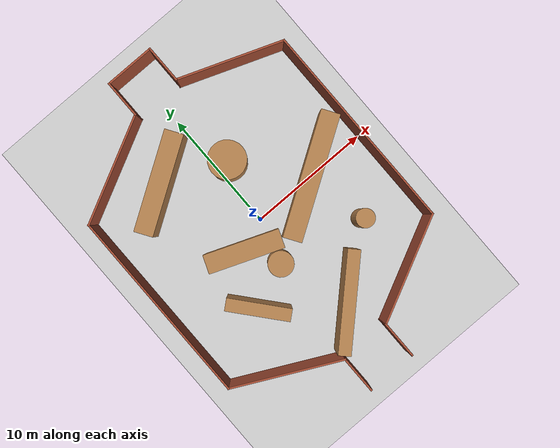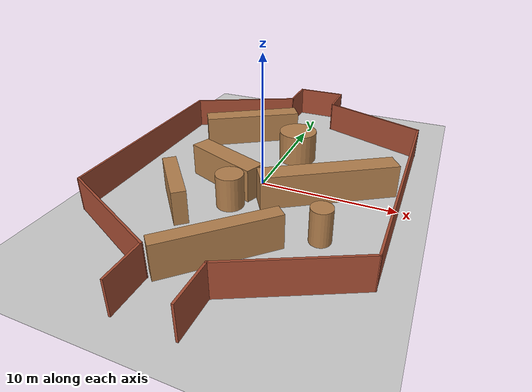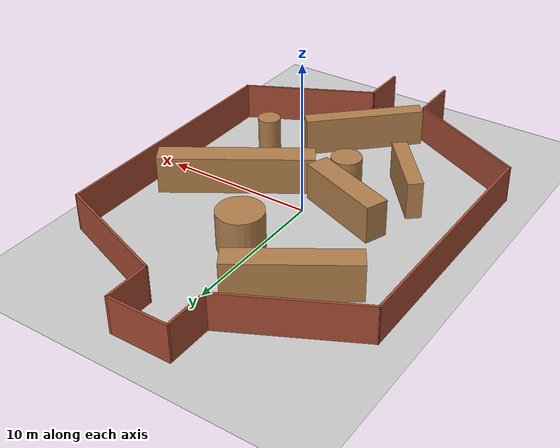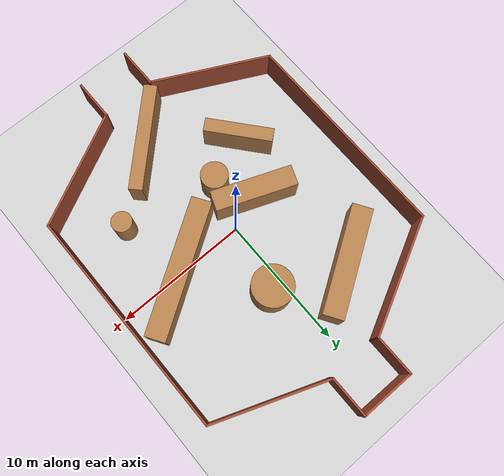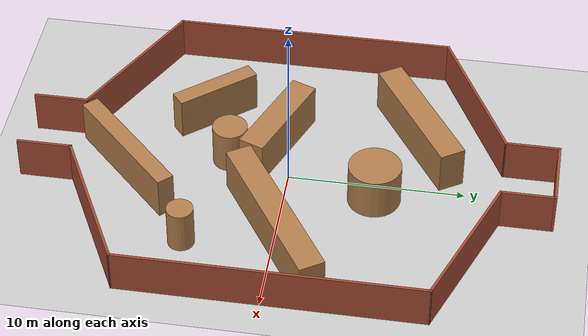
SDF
<sdf version="1.6">
 <world name="default">
  <light name="sun" type="directional">
   <pose>0 0 10 0 -0 0</pose>
   <diffuse>0.8 0.8 0.8 1</diffuse>
   <specular>0.1 0.1 0.1 1</specular>
   <attenuation>
    <range>1000</range>
    <constant>0.9</constant>
    <linear>0.01</linear>
    <quadratic>0.001</quadratic>
   </attenuation>
   <direction>-0.5 0.5 -1</direction>
  </light>
  <model name="ground_plane">
   <static>1</static>
   <link name="link">
    <collision name="collision">
     <geometry><plane><normal>0 0 1</normal><size>100 100</size></plane></geometry>
     <surface><friction><ode><mu>100</mu><mu2>50</mu2></ode></friction></surface>
    </collision>
    <visual name="visual">
     <cast_shadows>0</cast_shadows>
     <geometry><plane><normal>0 0 1</normal><size>100 100</size></plane></geometry>
     <material>
      <script><uri>file://media/materials/scripts/gazebo.material</uri><name>Gazebo/Grey</name></script>
     </material>
    </visual>
   </link>
  </model>
  <gravity>0 0 -9.8</gravity>
  <magnetic_field>6e-06 2.3e-05 -4.2e-05</magnetic_field>
  <atmosphere type="adiabatic"/>
  <physics name="default_physics" default="0" type="ode">
   <max_step_size>0.004</max_step_size>
   <real_time_factor>1</real_time_factor>
   <real_time_update_rate>5000</real_time_update_rate>
   <ode><solver><type>quick</type><iters>100</iters></solver></ode>
  </physics>
  <scene><ambient>0.4 0.4 0.4 1</ambient><background>0.7 0.7 0.7 1</background><shadows>1</shadows></scene>
  <spherical_coordinates>
   <surface_model>EARTH_WGS84</surface_model>
   <latitude_deg>0</latitude_deg>
   <longitude_deg>0</longitude_deg>
   <elevation>0</elevation>
   <heading_deg>0</heading_deg>
  </spherical_coordinates>
  <include><uri>model://Parkour2</uri><name>parkour</name></include>
 </world>
</sdf>

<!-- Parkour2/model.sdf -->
<sdf version='1.6'>
  <model name='Parkour2'>
    <pose frame=''>-0 0 0 0 -0 0</pose>
    <link name='Wall_0'>
      <collision name='Wall_0_Collision'>
        <geometry>
          <box>
            <size>3.15 0.15 2.5</size>
          </box>
        </geometry>
        <pose frame=''>0 0 1.25 0 -0 0</pose>
      </collision>
      <visual name='Wall_0_Visual'>
        <pose frame=''>0 0 1.25 0 -0 0</pose>
        <geometry>
          <box>
            <size>3.15 0.15 2.5</size>
          </box>
        </geometry>
        <material>
          <script>
            <uri>file://media/materials/scripts/gazebo.material</uri>
            <name>Gazebo/Bricks</name>
          </script>
          <ambient>1 1 1 1</ambient>
        </material>
      </visual>
      <pose frame=''>-2 13.5 0 0 0 -1.5708</pose>
    </link>
    <link name='Wall_1'>
      <collision name='Wall_1_Collision'>
        <geometry>
          <box>
            <size>9.09427 0.15 2.5</size>
          </box>
        </geometry>
        <pose frame=''>0 0 1.25 0 -0 0</pose>
      </collision>
      <visual name='Wall_1_Visual'>
        <pose frame=''>0 0 1.25 0 -0 0</pose>
        <geometry>
          <box>
            <size>9.09427 0.15 2.5</size>
          </box>
        </geometry>
        <material>
          <script>
            <uri>file://media/materials/scripts/gazebo.material</uri>
            <name>Gazebo/Bricks</name>
          </script>
          <ambient>1 1 1 1</ambient>
        </material>
      </visual>
      <pose frame=''>-6 10 0 0 0 -2.67794</pose>
    </link>
    <link name='Wall_10'>
      <collision name='Wall_10_Collision'>
        <geometry>
          <box>
            <size>3.15 0.15 2.5</size>
          </box>
        </geometry>
        <pose frame=''>0 0 1.25 0 -0 0</pose>
      </collision>
      <visual name='Wall_10_Visual'>
        <pose frame=''>0 0 1.25 0 -0 0</pose>
        <geometry>
          <box>
            <size>3.15 0.15 2.5</size>
          </box>
        </geometry>
        <material>
          <script>
            <uri>file://media/materials/scripts/gazebo.material</uri>
            <name>Gazebo/Bricks</name>
          </script>
          <ambient>1 1 1 1</ambient>
        </material>
      </visual>
      <pose frame=''>2 13.5 0 0 -0 1.5708</pose>
    </link>
    <link name='Wall_11'>
      <collision name='Wall_11_Collision'>
        <geometry>
          <box>
            <size>4.15 0.15 2.5</size>
          </box>
        </geometry>
        <pose frame=''>0 0 1.25 0 -0 0</pose>
      </collision>
      <visual name='Wall_11_Visual'>
        <pose frame=''>0 0 1.25 0 -0 0</pose>
        <geometry>
          <box>
            <size>4.15 0.15 2.5</size>
          </box>
        </geometry>
        <material>
          <script>
            <uri>file://media/materials/scripts/gazebo.material</uri>
            <name>Gazebo/Bricks</name>
          </script>
          <ambient>1 1 1 1</ambient>
        </material>
      </visual>
      <pose frame=''>0 15 0 0 -0 3.14159</pose>
    </link>
    <link name='Wall_2'>
      <collision name='Wall_2_Collision'>
        <geometry>
          <box>
            <size>16.15 0.15 2.5</size>
          </box>
        </geometry>
        <pose frame=''>0 0 1.25 0 -0 0</pose>
      </collision>
      <visual name='Wall_2_Visual'>
        <pose frame=''>0 0 1.25 0 -0 0</pose>
        <geometry>
          <box>
            <size>16.15 0.15 2.5</size>
          </box>
        </geometry>
        <material>
          <script>
            <uri>file://media/materials/scripts/gazebo.material</uri>
            <name>Gazebo/Bricks</name>
          </script>
          <ambient>1 1 1 1</ambient>
        </material>
      </visual>
      <pose frame=''>-10 0 0 0 0 -1.5708</pose>
    </link>
    <link name='Wall_3'>
      <collision name='Wall_3_Collision'>
        <geometry>
          <box>
            <size>9.09427 0.15 2.5</size>
          </box>
        </geometry>
        <pose frame=''>0 0 1.25 0 -0 0</pose>
      </collision>
      <visual name='Wall_3_Visual'>
        <pose frame=''>0 0 1.25 0 -0 0</pose>
        <geometry>
          <box>
            <size>9.09427 0.15 2.5</size>
          </box>
        </geometry>
        <material>
          <script>
            <uri>file://media/materials/scripts/gazebo.material</uri>
            <name>Gazebo/Bricks</name>
          </script>
          <ambient>1 1 1 1</ambient>
        </material>
      </visual>
      <pose frame=''>-6 -10 0 0 0 -0.463648</pose>
    </link>
    <link name='Wall_4'>
      <collision name='Wall_4_Collision'>
        <geometry>
          <box>
            <size>3.15 0.15 2.5</size>
          </box>
        </geometry>
        <pose frame=''>0 0 1.25 0 -0 0</pose>
      </collision>
      <visual name='Wall_4_Visual'>
        <pose frame=''>0 0 1.25 0 -0 0</pose>
        <geometry>
          <box>
            <size>3.15 0.15 2.5</size>
          </box>
        </geometry>
        <material>
          <script>
            <uri>file://media/materials/scripts/gazebo.material</uri>
            <name>Gazebo/Bricks</name>
          </script>
          <ambient>1 1 1 1</ambient>
        </material>
      </visual>
      <pose frame=''>-2 -13.5 0 0 0 -1.5708</pose>
    </link>
    <link name='Wall_6'>
      <collision name='Wall_6_Collision'>
        <geometry>
          <box>
            <size>3.15 0.15 2.5</size>
          </box>
        </geometry>
        <pose frame=''>0 0 1.25 0 -0 0</pose>
      </collision>
      <visual name='Wall_6_Visual'>
        <pose frame=''>0 0 1.25 0 -0 0</pose>
        <geometry>
          <box>
            <size>3.15 0.15 2.5</size>
          </box>
        </geometry>
        <material>
          <script>
            <uri>file://media/materials/scripts/gazebo.material</uri>
            <name>Gazebo/Bricks</name>
          </script>
          <ambient>1 1 1 1</ambient>
        </material>
      </visual>
      <pose frame=''>2 -13.5 0 0 -0 1.5708</pose>
    </link>
    <link name='Wall_7'>
      <collision name='Wall_7_Collision'>
        <geometry>
          <box>
            <size>9.09427 0.15 2.5</size>
          </box>
        </geometry>
        <pose frame=''>0 0 1.25 0 -0 0</pose>
      </collision>
      <visual name='Wall_7_Visual'>
        <pose frame=''>0 0 1.25 0 -0 0</pose>
        <geometry>
          <box>
            <size>9.09427 0.15 2.5</size>
          </box>
        </geometry>
        <material>
          <script>
            <uri>file://media/materials/scripts/gazebo.material</uri>
            <name>Gazebo/Bricks</name>
          </script>
          <ambient>1 1 1 1</ambient>
        </material>
      </visual>
      <pose frame=''>6 -10 0 0 -0 0.463648</pose>
    </link>
    <link name='Wall_8'>
      <collision name='Wall_8_Collision'>
        <geometry>
          <box>
            <size>17.15 0.15 2.5</size>
          </box>
        </geometry>
        <pose frame=''>0 0 1.25 0 -0 0</pose>
      </collision>
      <visual name='Wall_8_Visual'>
        <pose frame=''>0 0 1.25 0 -0 0</pose>
        <geometry>
          <box>
            <size>17.15 0.15 2.5</size>
          </box>
        </geometry>
        <material>
          <script>
            <uri>file://media/materials/scripts/gazebo.material</uri>
            <name>Gazebo/Bricks</name>
          </script>
          <ambient>1 1 1 1</ambient>
        </material>
      </visual>
      <pose frame=''>10 0.5 0 0 -0 1.5708</pose>
    </link>
    <link name='Wall_9'>
      <collision name='Wall_9_Collision'>
        <geometry>
          <box>
            <size>8.694 0.15 2.5</size>
          </box>
        </geometry>
        <pose frame=''>0 0 1.25 0 -0 0</pose>
      </collision>
      <visual name='Wall_9_Visual'>
        <pose frame=''>0 0 1.25 0 -0 0</pose>
        <geometry>
          <box>
            <size>8.694 0.15 2.5</size>
          </box>
        </geometry>
        <material>
          <script>
            <uri>file://media/materials/scripts/gazebo.material</uri>
            <name>Gazebo/Bricks</name>
          </script>
          <ambient>1 1 1 1</ambient>
        </material>
      </visual>
      <pose frame=''>6 10.5 0 0 -0 2.78282</pose>
    </link>

<!-- objects BOX -->
    <link name='Box_1'>
      <collision name='Box_1_Collision'>
        <geometry>
          <box>
            <size>1.5 8 2.5</size>
          </box>
        </geometry>
        <pose frame=''>0 0 1.25 0 -0 0</pose>
      </collision>
      <visual name='Box_1_Visual'>
        <pose frame=''>0 0 1.25 0 -0 0</pose>
        <geometry>
          <box>
            <size>1.5 8 2.5</size>
          </box>
        </geometry>
        <material>
          <script>
            <uri>file://media/materials/scripts/gazebo.material</uri>
            <name>Gazebo/Wood</name>
          </script>
          <ambient>1 1 1 1</ambient>
        </material>
      </visual>
      <pose frame=''>-4 7 0  -0 0 -1.0</pose>
    </link>

    <link name='Box_2'>
      <collision name='Box_2_Collision'>
        <geometry>
          <box>
            <size>1.5 10 2.5</size>
          </box>
        </geometry>
        <pose frame=''>0 0 1.25 0 -0 0</pose>
      </collision>
      <visual name='Box_2_Visual'>
        <pose frame=''>0 0 1.25 0 -0 0</pose>
        <geometry>
          <box>
            <size>1.5 10 2.5</size>
          </box>
        </geometry>
        <material>
          <script>
            <uri>file://media/materials/scripts/gazebo.material</uri>
            <name>Gazebo/Wood</name>
          </script>
          <ambient>1 1 1 1</ambient>
        </material>
      </visual>
      <pose frame=''>5 0 0 -0 0 -1.0</pose>
    </link>

    <link name='Box_3'>
      <collision name='Box_3_Collision'>
        <geometry>
          <box>
            <size>1.5 6 2.5</size>
          </box>
        </geometry>
        <pose frame=''>0 0 1.25 0 -0 0</pose>
      </collision>
      <visual name='Box_3_Visual'>
        <pose frame=''>0 0 1.25 0 -0 0</pose>
        <geometry>
          <box>
            <size>1.5 6 2.5</size>
          </box>
        </geometry>
        <material>
          <script>
            <uri>file://media/materials/scripts/gazebo.material</uri>
            <name>Gazebo/Wood</name>
          </script>
          <ambient>1 1 1 1</ambient>
        </material>
      </visual>
      <pose frame=''>-2.5 -1 0 -0 0 1.2</pose>
    </link>

    <link name='Box_4'>
      <collision name='Box_4_Collision'>
        <geometry>
          <box>
            <size>1 8 2.5</size>
          </box>
        </geometry>
        <pose frame=''>0 0 1.25 0 -0 0</pose>
      </collision>
      <visual name='Box_4_Visual'>
        <pose frame=''>0 0 1.25 0 -0 0</pose>
        <geometry>
          <box>
            <size>1 8 2.5</size>
          </box>
        </geometry>
        <material>
          <script>
            <uri>file://media/materials/scripts/gazebo.material</uri>
            <name>Gazebo/Wood</name>
          </script>
          <ambient>1 1 1 1</ambient>
        </material>
      </visual>
      <pose frame=''>1 -9 0 -0 0 -0.8</pose>
    </link>

    <link name='Box_5'>
      <collision name='Box_5_Collision'>
        <geometry>
          <box>
            <size>1 5 2.5</size>
          </box>
        </geometry>
        <pose frame=''>0 0 1.25 0 -0 0</pose>
      </collision>
      <visual name='Box_5_Visual'>
        <pose frame=''>0 0 1.25 0 -0 0</pose>
        <geometry>
          <box>
            <size>1 5 2.5</size>
          </box>
        </geometry>
        <material>
          <script>
            <uri>file://media/materials/scripts/gazebo.material</uri>
            <name>Gazebo/Wood</name>
          </script>
          <ambient>1 1 1 1</ambient>
        </material>
      </visual>
      <pose frame=''>-4.5 -5 0 -0 0 0.7</pose>
    </link>

<!-- object Cylinder -->
    <link name='Cylinder_1'>
      <collision name='Cylinder_1_Collision'>
        <geometry>
          <cylinder>
            <radius>1.5</radius>
            <length>2.5</length>
          </cylinder>
        </geometry>
        <pose frame=''>0 0 1.25 0 -0 0</pose>
      </collision>
      <visual name='Cylinder_1_Visual'>
        <pose frame=''>0 0 1.25 0 -0 0</pose>
        <geometry>
          <cylinder>
            <radius>1.5</radius>
            <length>2.5</length>
          </cylinder>
        </geometry>
        <material>
          <script>
            <uri>file://media/materials/scripts/gazebo.material</uri>
            <name>Gazebo/Wood</name>
          </script>
          <ambient>1 1 1 1</ambient>
        </material>
      </visual>
      <pose frame=''>1 5 0 -0 0 0</pose>
    </link>

    <link name='Cylinder_2'>
      <collision name='Cylinder_2_Collision'>
        <geometry>
          <cylinder>
            <radius>1.0</radius>
            <length>2.5</length>
          </cylinder>
        </geometry>
        <pose frame=''>0 0 1.25 0 -0 0</pose>
      </collision>
      <visual name='Cylinder_2_Visual'>
        <pose frame=''>0 0 1.25 0 -0 0</pose>
        <geometry>
          <cylinder>
            <radius>1.0</radius>
            <length>2.5</length>
          </cylinder>
        </geometry>
        <material>
          <script>
            <uri>file://media/materials/scripts/gazebo.material</uri>
            <name>Gazebo/Wood</name>
          </script>
          <ambient>1 1 1 1</ambient>
        </material>
      </visual>
      <pose frame=''>-1 -3.5 0 -0 0 0</pose>
    </link>

    <link name='Cylinder_3'>
      <collision name='Cylinder_3_Collision'>
        <geometry>
          <cylinder>
            <radius>0.75</radius>
            <length>2.5</length>
          </cylinder>
        </geometry>
        <pose frame=''>0 0 1.25 0 -0 0</pose>
      </collision>
      <visual name='Cylinder_3_Visual'>
        <pose frame=''>0 0 1.25 0 -0 0</pose>
        <geometry>
          <cylinder>
            <radius>0.75</radius>
            <length>2.5</length>
          </cylinder>
        </geometry>
        <material>
          <script>
            <uri>file://media/materials/scripts/gazebo.material</uri>
            <name>Gazebo/Wood</name>
          </script>
          <ambient>1 1 1 1</ambient>
        </material>
      </visual>
      <pose frame=''>6 -5 0 -0 0 0</pose>
    </link>

    <static>1</static>
  </model>
</sdf>
